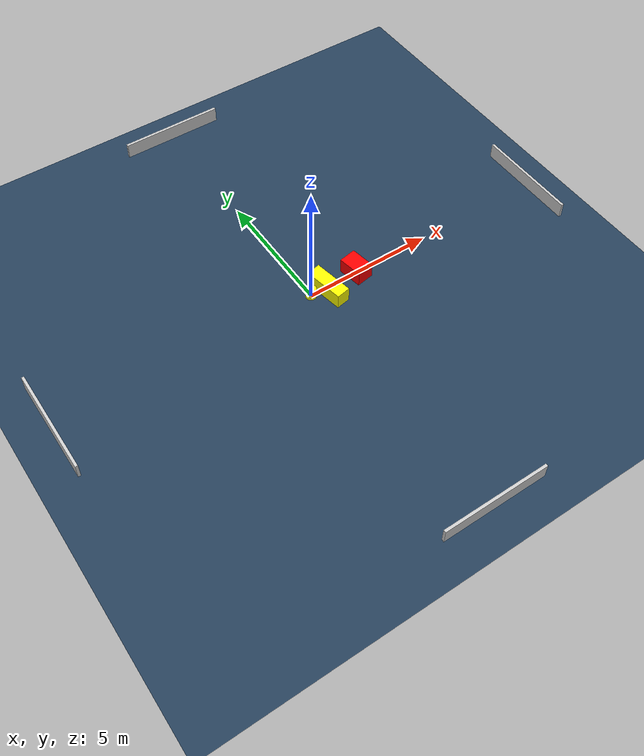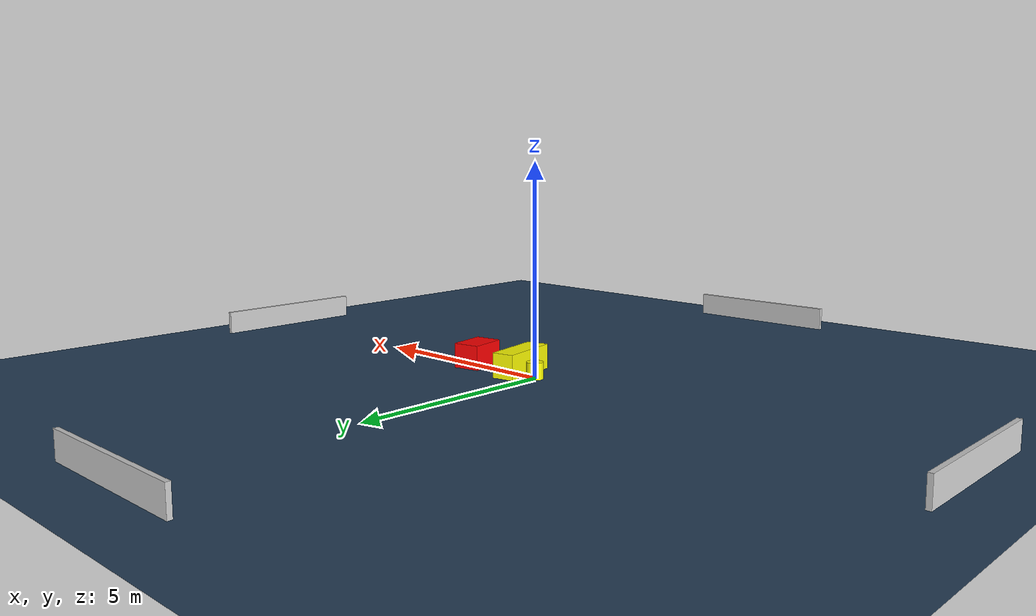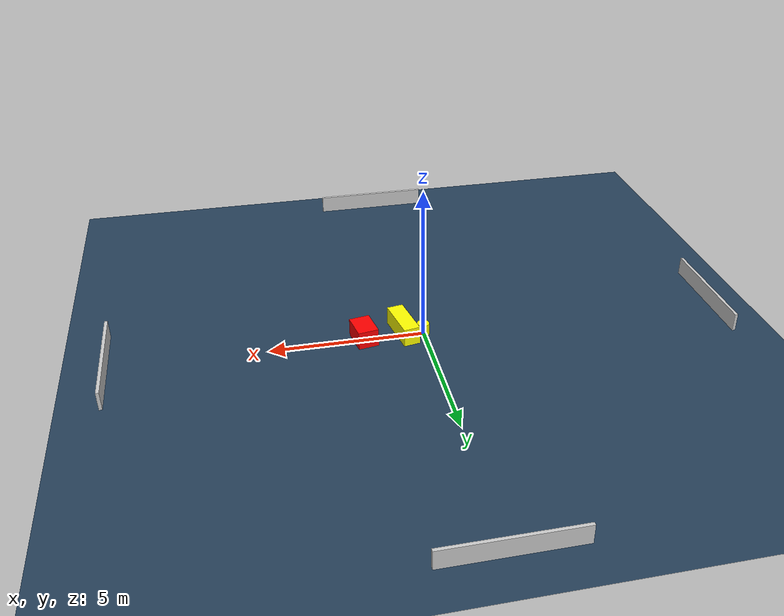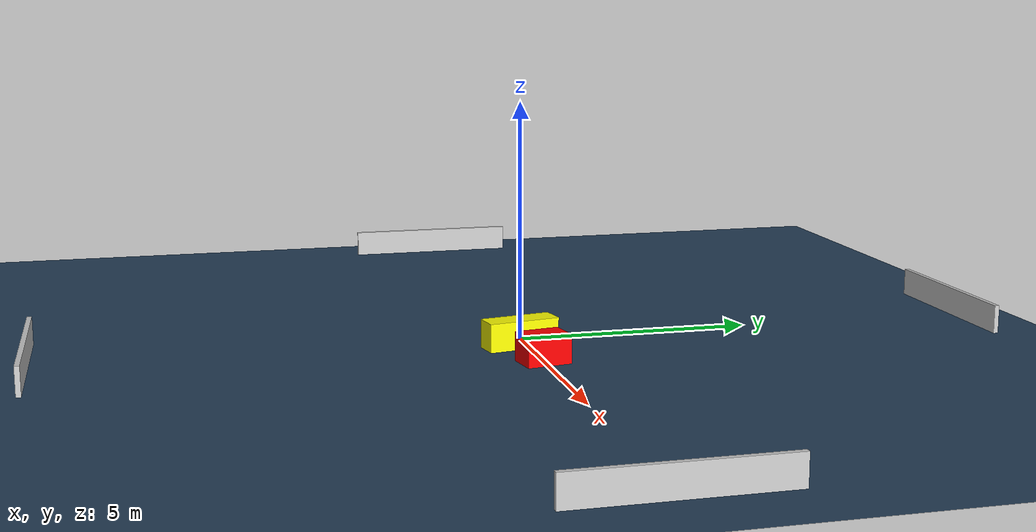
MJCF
<?xml version="1.0" ?>
<mujoco model="generated_environment">
  <option timestep="0.01" integrator="RK4" cone="elliptic"/>
  <default>
    <geom density="1"/>
  </default>
  <asset>
    <texture builtin="gradient" height="3072" name="skybox" rgb1="0.3 0.5 0.7" rgb2="0 0 0" type="skybox" width="512"/>
    <texture builtin="checker" height="300" name="groundplane" rgb1="0.2 0.3 0.4" rgb2="0.1 0.2 0.3" type="2d" width="300"/>
    <material name="groundplane" reflectance="0.2" texrepeat="5 5" texture="groundplane"/>
  </asset>
  <worldbody>
    <light dir="0 0 -1" directional="true" pos="0 0 1.5"/>
    <geom condim="3" friction="0.5 0.005 0.001" material="groundplane" name="floor" pos="0 0 0" size="0 0 0.05" type="plane"/>
    <body name="walls">
      <geom name="wall_1" condim="4" pos="-10.0 0.0 0.3" rgba="0.800000011920929 0.800000011920929 0.800000011920929 1.0" size="0.05 2.0 0.3" type="box"/>
      <geom name="wall_2" condim="4" pos="10.0 0.0 0.3" rgba="0.800000011920929 0.800000011920929 0.800000011920929 1.0" size="0.05 2.0 0.3" type="box"/>
      <geom name="wall_3" condim="4" pos="0.0 -10.0 0.3" rgba="0.800000011920929 0.800000011920929 0.800000011920929 1.0" size="2.0 0.05 0.3" type="box"/>
      <geom name="wall_4" condim="4" pos="0.0 10.0 0.3" rgba="0.800000011920929 0.800000011920929 0.800000011920929 1.0" size="2.0 0.05 0.3" type="box"/>
    </body>
    <body name="robot">
      <joint name="joint_x" type="slide" pos="0 0 0" axis="1 0 0"/>
      <joint name="joint_y" type="slide" pos="0 0 0" axis="0 1 0"/>
      <geom name="robot" type="cylinder" pos="0.0 0.0 0.2" size="0.2 0.2 0.0" mass="5.0" friction="1.0 0.005 0.0001" condim="4" rgba="1.0 1.0 0.0 1.0"/>
    </body>
    <body name="obstacle_1_movable">
      <geom name="obstacle_1_movable" condim="4" pos="0.6213690395220317 -0.17335937790850547 0.3" euler="0 0 190.3045347476138" friction="0.0 0.005 0.001" rgba="1.0 1.0 0.0 1.0" size="0.2687013171005407 0.7617867596704289 0.3" type="box" mass="0.1"/>
      <joint type="free"/>
    </body>
    <body name="obstacle_2_static">
      <geom name="obstacle_2_static" condim="4" pos="1.941068974104756 -0.02174384370845779 0.3" euler="0 0 9.798450843010125" friction="0.0 0.005 0.001" rgba="1.0 0.0 0.0 1.0" size="0.3337421956495663 0.46860998768253787 0.3" type="box"/>
    </body>
  </worldbody>
  <actuator>
    <motor name="actuator_x" joint="joint_x" gear="1" ctrlrange="-1 1"/>
    <motor name="actuator_y" joint="joint_y" gear="1" ctrlrange="-1 1"/>
  </actuator>
</mujoco>
